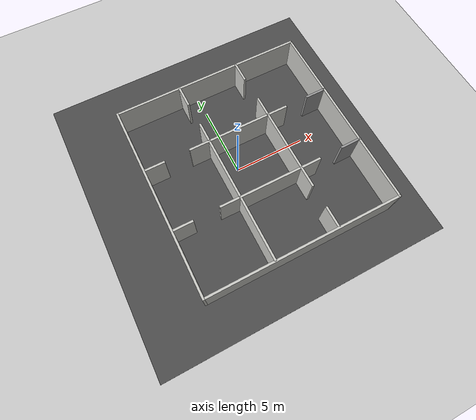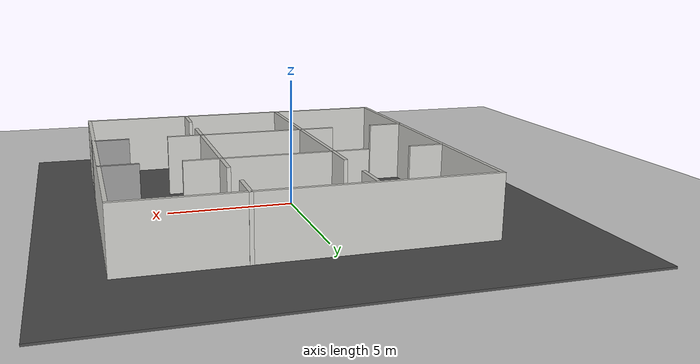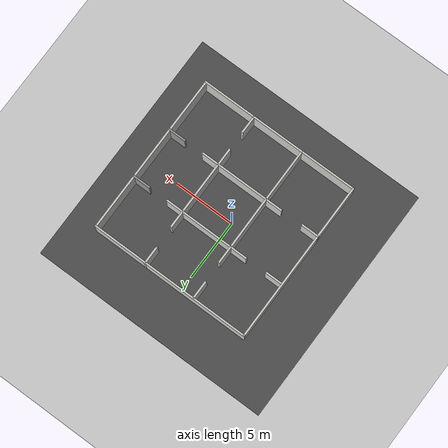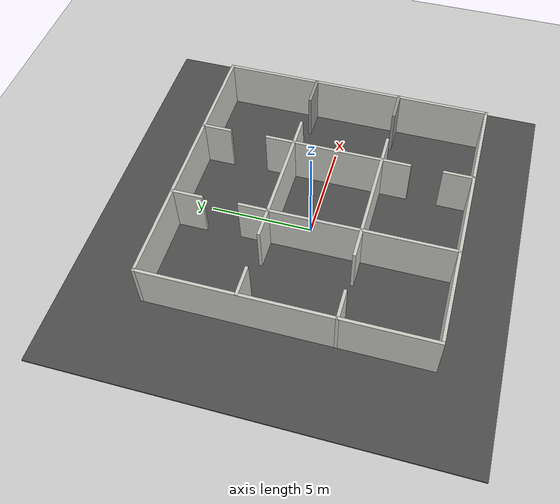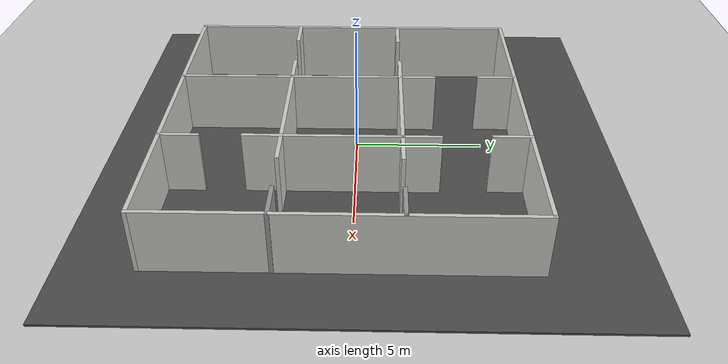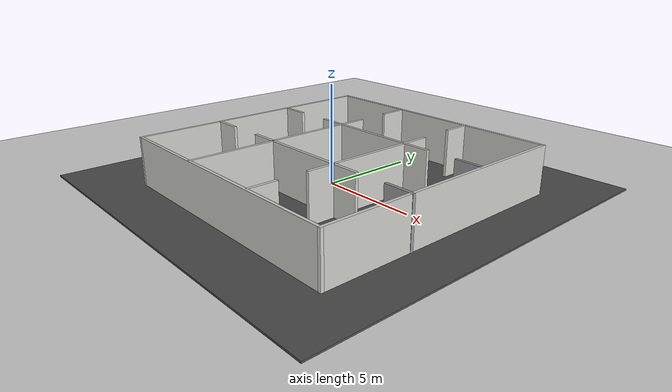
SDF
<sdf version="1.6">
 <world name="default">
  <model name="ground_plane">
   <static>1</static>
   <link name="link">
    <collision name="collision">
     <geometry><plane><normal>0 0 1</normal><size>100 100</size></plane></geometry>
     <surface><friction><ode><mu>100</mu><mu2>50</mu2></ode></friction></surface>
    </collision>
    <visual name="visual">
     <cast_shadows>0</cast_shadows>
     <geometry><plane><normal>0 0 1</normal><size>100 100</size></plane></geometry>
     <material>
      <script><uri>file://media/materials/scripts/gazebo.material</uri><name>Gazebo/Grey</name></script>
     </material>
    </visual>
   </link>
  </model>
  <gravity>0 0 -9.8</gravity>
  <magnetic_field>6e-06 2.3e-05 -4.2e-05</magnetic_field>
  <atmosphere type="adiabatic"/>
  <physics name="default_physics" default="0" type="ode">
   <max_step_size>0.001</max_step_size>
   <real_time_factor>1</real_time_factor>
   <real_time_update_rate>1000</real_time_update_rate>
  </physics>
  <scene><ambient>0.4 0.4 0.4 1</ambient><background>0.7 0.7 0.7 1</background><shadows>1</shadows></scene>
  <spherical_coordinates>
   <surface_model>EARTH_WGS84</surface_model>
   <latitude_deg>0</latitude_deg>
   <longitude_deg>0</longitude_deg>
   <elevation>0</elevation>
   <heading_deg>0</heading_deg>
  </spherical_coordinates>
  <model name="WorldLastSimple">
   <pose>0.89309 -0.348292 0 0 -0 0</pose>
   <link name="Wall_0">
    <collision name="Wall_0_Collision">
     <geometry><box><size>13.5 0.15 2.5</size></box></geometry>
     <pose>0 0 1.25 0 -0 0</pose>
    </collision>
    <visual name="Wall_0_Visual">
     <pose>0 0 1.25 0 -0 0</pose>
     <geometry><box><size>13.5 0.15 2.5</size></box></geometry>
     <material>
      <script><uri>file://media/materials/scripts/gazebo.material</uri><name>Gazebo/CeilingTiled</name></script>
      <ambient>1 1 1 1</ambient>
     </material>
     <meta><layer>0</layer></meta>
    </visual>
    <pose>-6.68239 -0.005243 0 0 0 -1.5708</pose>
   </link>
   <link name="Wall_10">
    <collision name="Wall_10_Collision">
     <geometry><box><size>1.5 0.15 2.5</size></box></geometry>
     <pose>0 0 1.25 0 -0 0</pose>
    </collision>
    <visual name="Wall_10_Visual">
     <pose>0 0 1.25 0 -0 0</pose>
     <geometry><box><size>1.5 0.15 2.5</size></box></geometry>
     <material>
      <script><uri>file://media/materials/scripts/gazebo.material</uri><name>Gazebo/CeilingTiled</name></script>
      <ambient>1 1 1 1</ambient>
     </material>
     <meta><layer>0</layer></meta>
    </visual>
    <pose>-2.73375 -2.27943 0 0 -0 3.14159</pose>
   </link>
   <link name="Wall_13">
    <collision name="Wall_13_Collision">
     <geometry><box><size>1.5 0.15 2.5</size></box></geometry>
     <pose>0 0 1.25 0 -0 0</pose>
    </collision>
    <visual name="Wall_13_Visual">
     <pose>0 0 1.25 0 -0 0</pose>
     <geometry><box><size>1.5 0.15 2.5</size></box></geometry>
     <material>
      <script><uri>file://media/materials/scripts/gazebo.material</uri><name>Gazebo/CeilingTiled</name></script>
      <ambient>1 1 1 1</ambient>
     </material>
     <meta><layer>0</layer></meta>
    </visual>
    <pose>-6.00987 -2.32512 0 0 -0 0</pose>
   </link>
   <link name="Wall_17">
    <collision name="Wall_17_Collision">
     <geometry><box><size>1.5 0.15 2.5</size></box></geometry>
     <pose>0 0 1.25 0 -0 0</pose>
    </collision>
    <visual name="Wall_17_Visual">
     <pose>0 0 1.25 0 -0 0</pose>
     <geometry><box><size>1.5 0.15 2.5</size></box></geometry>
     <material>
      <script><uri>file://media/materials/scripts/gazebo.material</uri><name>Gazebo/CeilingTiled</name></script>
      <ambient>1 1 1 1</ambient>
     </material>
     <meta><layer>0</layer></meta>
    </visual>
    <pose>-2.75688 2.07057 0 0 -0 3.14159</pose>
   </link>
   <link name="Wall_2">
    <collision name="Wall_2_Collision">
     <geometry><box><size>13.5 0.15 2.5</size></box></geometry>
     <pose>0 0 1.25 0 -0 0</pose>
    </collision>
    <visual name="Wall_2_Visual">
     <pose>0 0 1.25 0 -0 0</pose>
     <geometry><box><size>13.5 0.15 2.5</size></box></geometry>
     <material>
      <script><uri>file://media/materials/scripts/gazebo.material</uri><name>Gazebo/CeilingTiled</name></script>
      <ambient>1 1 1 1</ambient>
     </material>
     <meta><layer>0</layer></meta>
    </visual>
    <pose>-0.007392 6.66976 0 0 -0 0</pose>
   </link>
   <link name="Wall_20">
    <collision name="Wall_20_Collision">
     <geometry><box><size>1.5 0.15 2.5</size></box></geometry>
     <pose>0 0 1.25 0 -0 0</pose>
    </collision>
    <visual name="Wall_20_Visual">
     <pose>0 0 1.25 0 -0 0</pose>
     <geometry><box><size>1.5 0.15 2.5</size></box></geometry>
     <material>
      <script><uri>file://media/materials/scripts/gazebo.material</uri><name>Gazebo/CeilingTiled</name></script>
      <ambient>1 1 1 1</ambient>
     </material>
     <meta><layer>0</layer></meta>
    </visual>
    <pose>-5.98909 2.03343 0 0 -0 0</pose>
   </link>
   <link name="Wall_24">
    <collision name="Wall_24_Collision">
     <geometry><box><size>1.5 0.15 2.5</size></box></geometry>
     <pose>0 0 1.25 0 -0 0</pose>
    </collision>
    <visual name="Wall_24_Visual">
     <pose>0 0 1.25 0 -0 0</pose>
     <geometry><box><size>1.5 0.15 2.5</size></box></geometry>
     <material>
      <script><uri>file://media/materials/scripts/gazebo.material</uri><name>Gazebo/CeilingTiled</name></script>
      <ambient>1 1 1 1</ambient>
     </material>
     <meta><layer>0</layer></meta>
    </visual>
    <pose>-2.14437 5.92029 0 0 0 -1.5708</pose>
   </link>
   <link name="Wall_26">
    <collision name="Wall_26_Collision">
     <geometry><box><size>4.50006 0.15 2.5</size></box></geometry>
     <pose>0 0 1.25 0 -0 0</pose>
    </collision>
    <visual name="Wall_26_Visual">
     <pose>0 0 1.25 0 -0 0</pose>
     <geometry><box><size>4.50006 0.15 2.5</size></box></geometry>
     <material>
      <script><uri>file://media/materials/scripts/gazebo.material</uri><name>Gazebo/CeilingTiled</name></script>
      <ambient>1 1 1 1</ambient>
     </material>
     <meta><layer>0</layer></meta>
    </visual>
    <pose>-2.07031 -0.104426 0 0 -0 1.57611</pose>
   </link>
   <link name="Wall_27">
    <collision name="Wall_27_Collision">
     <geometry><box><size>1.5 0.15 2.5</size></box></geometry>
     <pose>0 0 1.25 0 -0 0</pose>
    </collision>
    <visual name="Wall_27_Visual">
     <pose>0 0 1.25 0 -0 0</pose>
     <geometry><box><size>1.5 0.15 2.5</size></box></geometry>
     <material>
      <script><uri>file://media/materials/scripts/gazebo.material</uri><name>Gazebo/CeilingTiled</name></script>
      <ambient>1 1 1 1</ambient>
     </material>
     <meta><layer>0</layer></meta>
    </visual>
    <pose>-2.08188 2.74557 0 0 -0 1.5708</pose>
   </link>
   <link name="Wall_29">
    <collision name="Wall_29_Collision">
     <geometry><box><size>4.5 0.15 2.5</size></box></geometry>
     <pose>0 0 1.25 0 -0 0</pose>
    </collision>
    <visual name="Wall_29_Visual">
     <pose>0 0 1.25 0 -0 0</pose>
     <geometry><box><size>4.5 0.15 2.5</size></box></geometry>
     <material>
      <script><uri>file://media/materials/scripts/gazebo.material</uri><name>Gazebo/CeilingTiled</name></script>
      <ambient>1 1 1 1</ambient>
     </material>
     <meta><layer>0</layer></meta>
    </visual>
    <pose>0.093122 2.07057 0 0 -0 0</pose>
   </link>
   <link name="Wall_30">
    <collision name="Wall_30_Collision">
     <geometry><box><size>4.5 0.15 2.5</size></box></geometry>
     <pose>0 0 1.25 0 -0 0</pose>
    </collision>
    <visual name="Wall_30_Visual">
     <pose>0 0 1.25 0 -0 0</pose>
     <geometry><box><size>4.5 0.15 2.5</size></box></geometry>
     <material>
      <script><uri>file://media/materials/scripts/gazebo.material</uri><name>Gazebo/CeilingTiled</name></script>
      <ambient>1 1 1 1</ambient>
     </material>
     <meta><layer>0</layer></meta>
    </visual>
    <pose>2.26812 -0.104426 0 0 0 -1.5708</pose>
   </link>
   <link name="Wall_31">
    <collision name="Wall_31_Collision">
     <geometry><box><size>4.47687 0.15 2.5</size></box></geometry>
     <pose>0 0 1.25 0 -0 0</pose>
    </collision>
    <visual name="Wall_31_Visual">
     <pose>0 0 1.25 0 -0 0</pose>
     <geometry><box><size>4.47687 0.15 2.5</size></box></geometry>
     <material>
      <script><uri>file://media/materials/scripts/gazebo.material</uri><name>Gazebo/CeilingTiled</name></script>
      <ambient>1 1 1 1</ambient>
     </material>
     <meta><layer>0</layer></meta>
    </visual>
    <pose>0.104687 -2.27943 0 0 -0 3.14159</pose>
   </link>
   <link name="Wall_33">
    <collision name="Wall_33_Collision">
     <geometry><box><size>1.5 0.15 2.5</size></box></geometry>
     <pose>0 0 1.25 0 -0 0</pose>
    </collision>
    <visual name="Wall_33_Visual">
     <pose>0 0 1.25 0 -0 0</pose>
     <geometry><box><size>1.5 0.15 2.5</size></box></geometry>
     <material>
      <script><uri>file://media/materials/scripts/gazebo.material</uri><name>Gazebo/CeilingTiled</name></script>
      <ambient>1 1 1 1</ambient>
     </material>
     <meta><layer>0</layer></meta>
    </visual>
    <pose>2.26812 2.74557 0 0 -0 1.5708</pose>
   </link>
   <link name="Wall_35">
    <collision name="Wall_35_Collision">
     <geometry><box><size>1.5 0.15 2.5</size></box></geometry>
     <pose>0 0 1.25 0 -0 0</pose>
    </collision>
    <visual name="Wall_35_Visual">
     <pose>0 0 1.25 0 -0 0</pose>
     <geometry><box><size>1.5 0.15 2.5</size></box></geometry>
     <material>
      <script><uri>file://media/materials/scripts/gazebo.material</uri><name>Gazebo/CeilingTiled</name></script>
      <ambient>1 1 1 1</ambient>
     </material>
     <meta><layer>0</layer></meta>
    </visual>
    <pose>2.19666 6.00524 0 0 0 -1.5708</pose>
   </link>
   <link name="Wall_37">
    <collision name="Wall_37_Collision">
     <geometry><box><size>1.5 0.15 2.5</size></box></geometry>
     <pose>0 0 1.25 0 -0 0</pose>
    </collision>
    <visual name="Wall_37_Visual">
     <pose>0 0 1.25 0 -0 0</pose>
     <geometry><box><size>1.5 0.15 2.5</size></box></geometry>
     <material>
      <script><uri>file://media/materials/scripts/gazebo.material</uri><name>Gazebo/CeilingTiled</name></script>
      <ambient>1 1 1 1</ambient>
     </material>
     <meta><layer>0</layer></meta>
    </visual>
    <pose>2.94312 2.07057 0 0 -0 0</pose>
   </link>
   <link name="Wall_39">
    <collision name="Wall_39_Collision">
     <geometry><box><size>1.5 0.15 2.5</size></box></geometry>
     <pose>0 0 1.25 0 -0 0</pose>
    </collision>
    <visual name="Wall_39_Visual">
     <pose>0 0 1.25 0 -0 0</pose>
     <geometry><box><size>1.5 0.15 2.5</size></box></geometry>
     <material>
      <script><uri>file://media/materials/scripts/gazebo.material</uri><name>Gazebo/Grey</name></script>
      <ambient>1 1 1 1</ambient>
     </material>
     <meta><layer>0</layer></meta>
    </visual>
    <pose>5.98976 2.0779 0 0 -0 3.14159</pose>
   </link>
   <link name="Wall_4">
    <collision name="Wall_4_Collision">
     <geometry><box><size>13.5 0.15 2.5</size></box></geometry>
     <pose>0 0 1.25 0 -0 0</pose>
    </collision>
    <visual name="Wall_4_Visual">
     <pose>0 0 1.25 0 -0 0</pose>
     <geometry><box><size>13.5 0.15 2.5</size></box></geometry>
     <material>
      <script><uri>file://media/materials/scripts/gazebo.material</uri><name>Gazebo/CeilingTiled</name></script>
      <ambient>1 1 1 1</ambient>
     </material>
     <meta><layer>0</layer></meta>
    </visual>
    <pose>6.66761 -0.005243 0 0 0 -1.5708</pose>
   </link>
   <link name="Wall_41">
    <collision name="Wall_41_Collision">
     <geometry><box><size>1.5 0.15 2.5</size></box></geometry>
     <pose>0 0 1.25 0 -0 0</pose>
    </collision>
    <visual name="Wall_41_Visual">
     <pose>0 0 1.25 0 -0 0</pose>
     <geometry><box><size>1.5 0.15 2.5</size></box></geometry>
     <material>
      <script><uri>file://media/materials/scripts/gazebo.material</uri><name>Gazebo/CeilingTiled</name></script>
      <ambient>1 1 1 1</ambient>
     </material>
     <meta><layer>0</layer></meta>
    </visual>
    <pose>2.94312 -2.27943 0 0 -0 0</pose>
   </link>
   <link name="Wall_43">
    <collision name="Wall_43_Collision">
     <geometry><box><size>1.5 0.15 2.5</size></box></geometry>
     <pose>0 0 1.25 0 -0 0</pose>
    </collision>
    <visual name="Wall_43_Visual">
     <pose>0 0 1.25 0 -0 0</pose>
     <geometry><box><size>1.5 0.15 2.5</size></box></geometry>
     <material>
      <script><uri>file://media/materials/scripts/gazebo.material</uri><name>Gazebo/Grey</name></script>
      <ambient>1 1 1 1</ambient>
     </material>
     <meta><layer>0</layer></meta>
    </visual>
    <pose>6.00987 -2.24651 0 0 -0 3.14159</pose>
   </link>
   <link name="Wall_46">
    <collision name="Wall_46_Collision">
     <geometry><box><size>1.5 0.15 2.5</size></box></geometry>
     <pose>0 0 1.25 0 -0 0</pose>
    </collision>
    <visual name="Wall_46_Visual">
     <pose>0 0 1.25 0 -0 0</pose>
     <geometry><box><size>1.5 0.15 2.5</size></box></geometry>
     <material>
      <script><uri>file://media/materials/scripts/gazebo.material</uri><name>Gazebo/CeilingTiled</name></script>
      <ambient>1 1 1 1</ambient>
     </material>
     <meta><layer>0</layer></meta>
    </visual>
    <pose>2.26812 -2.95443 0 0 0 -1.5708</pose>
   </link>
   <link name="Wall_48">
    <collision name="Wall_48_Collision">
     <geometry><box><size>1.5 0.15 2.5</size></box></geometry>
     <pose>0 0 1.25 0 -0 0</pose>
    </collision>
    <visual name="Wall_48_Visual">
     <pose>0 0 1.25 0 -0 0</pose>
     <geometry><box><size>1.5 0.15 2.5</size></box></geometry>
     <material>
      <script><uri>file://media/materials/scripts/gazebo.material</uri><name>Gazebo/CeilingTiled</name></script>
      <ambient>1 1 1 1</ambient>
     </material>
     <meta><layer>0</layer></meta>
    </visual>
    <pose>2.28272 -5.96221 0 0 -0 1.5708</pose>
   </link>
   <link name="Wall_6">
    <collision name="Wall_6_Collision">
     <geometry><box><size>13.5 0.15 2.5</size></box></geometry>
     <pose>0 0 1.25 0 -0 0</pose>
    </collision>
    <visual name="Wall_6_Visual">
     <pose>0 0 1.25 0 -0 0</pose>
     <geometry><box><size>13.5 0.15 2.5</size></box></geometry>
     <material>
      <script><uri>file://media/materials/scripts/gazebo.material</uri><name>Gazebo/CeilingTiled</name></script>
      <ambient>1 1 1 1</ambient>
     </material>
     <meta><layer>0</layer></meta>
    </visual>
    <pose>-0.007392 -6.68024 0 0 -0 0</pose>
   </link>
   <link name="Wall_9">
    <collision name="Wall_9_Collision">
     <geometry><box><size>4.5 0.15 2.5</size></box></geometry>
     <pose>0 0 1.25 0 -0 0</pose>
    </collision>
    <visual name="Wall_9_Visual">
     <pose>0 0 1.25 0 -0 0</pose>
     <geometry><box><size>4.5 0.15 2.5</size></box></geometry>
     <material>
      <script><uri>file://media/materials/scripts/gazebo.material</uri><name>Gazebo/CeilingTiled</name></script>
      <ambient>1 1 1 1</ambient>
     </material>
     <meta><layer>0</layer></meta>
    </visual>
    <pose>-2.05875 -4.45443 0 0 -0 1.5708</pose>
   </link>
   <static>1</static>
  </model>
  <light name="user_directional_light_0" type="directional">
   <pose>0.267035 5.10223 1 0 -0 0</pose>
   <diffuse>0.5 0.5 0.5 1</diffuse>
   <specular>0.1 0.1 0.1 1</specular>
   <direction>0.1 0.1 -0.9</direction>
   <attenuation>
    <range>20</range>
    <constant>0.5</constant>
    <linear>0.01</linear>
    <quadratic>0.001</quadratic>
   </attenuation>
  </light>
  <light name="user_directional_light_1" type="directional">
   <pose>-4.67882 5.04387 1 0 -0 0</pose>
   <diffuse>0.5 0.5 0.5 1</diffuse>
   <specular>0.1 0.1 0.1 1</specular>
   <direction>0.1 0.1 -0.9</direction>
   <attenuation>
    <range>20</range>
    <constant>0.5</constant>
    <linear>0.01</linear>
    <quadratic>0.001</quadratic>
   </attenuation>
  </light>
  <model name="asphalt_plane">
   <static>1</static>
   <link name="link">
    <collision name="collision"><geometry><box><size>20 20 0.1</size></box></geometry></collision>
    <visual name="visual">
     <cast_shadows>0</cast_shadows>
     <geometry><box><size>20 20 0.1</size></box></geometry>
     <material>
      <script>
       <uri>model://asphalt_plane/materials/scripts</uri>
       <uri>model://asphalt_plane/materials/textures</uri>
       <name>vrc/asphalt</name>
      </script>
     </material>
    </visual>
   </link>
   <pose>0.021523 0.181917 0 0 -0 0</pose>
  </model>
 </world>
</sdf>
